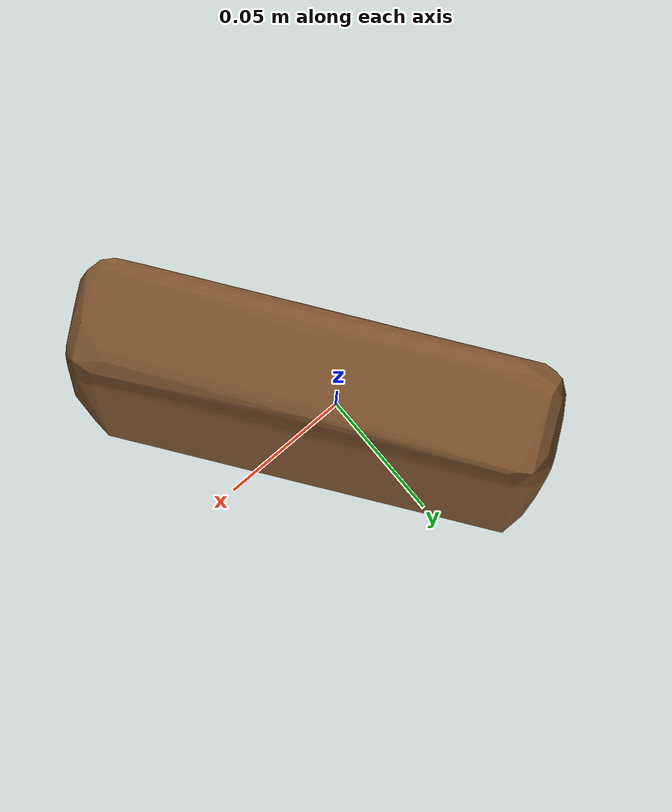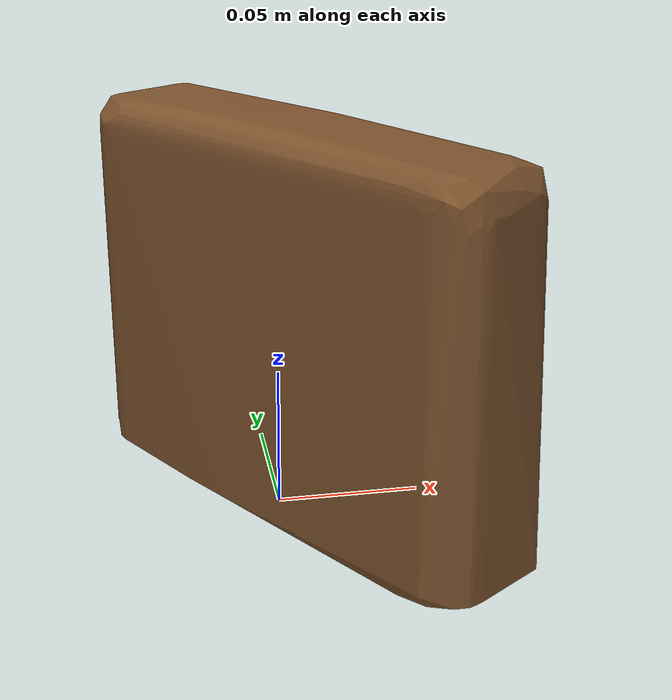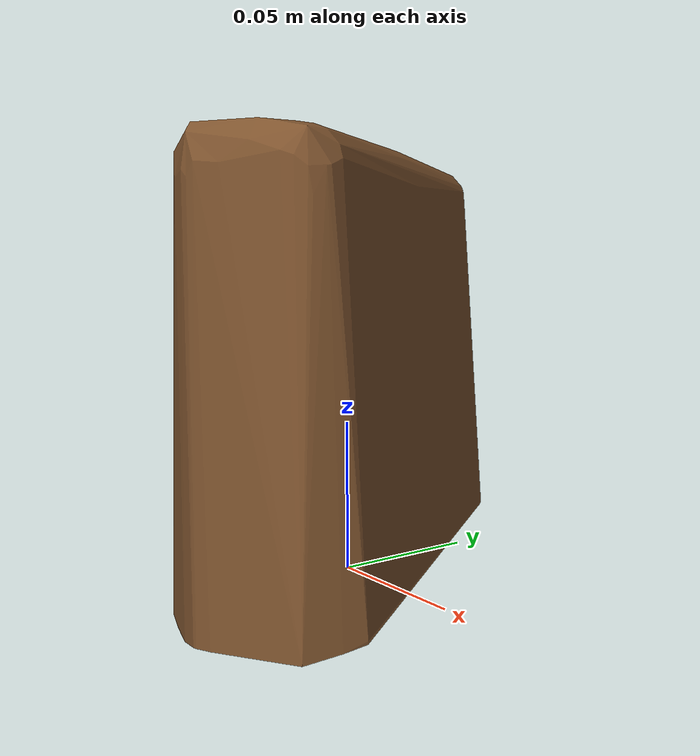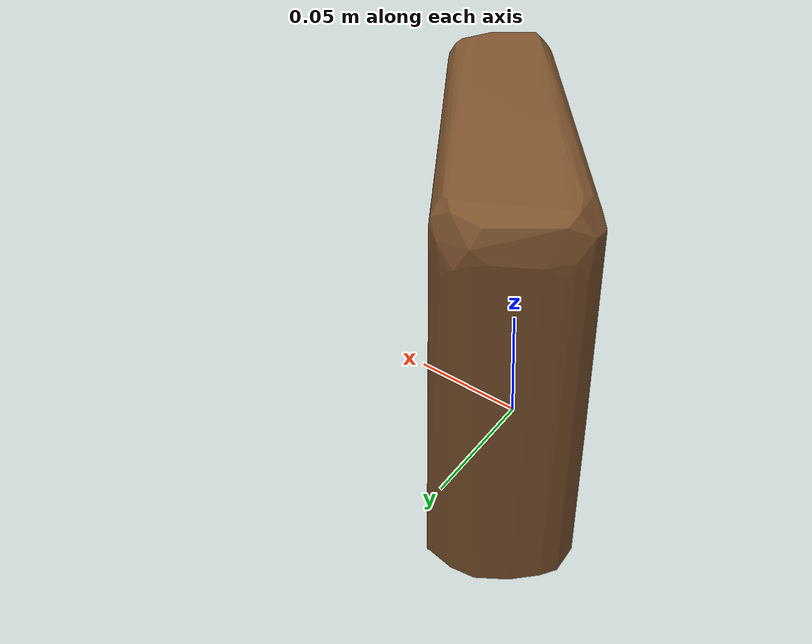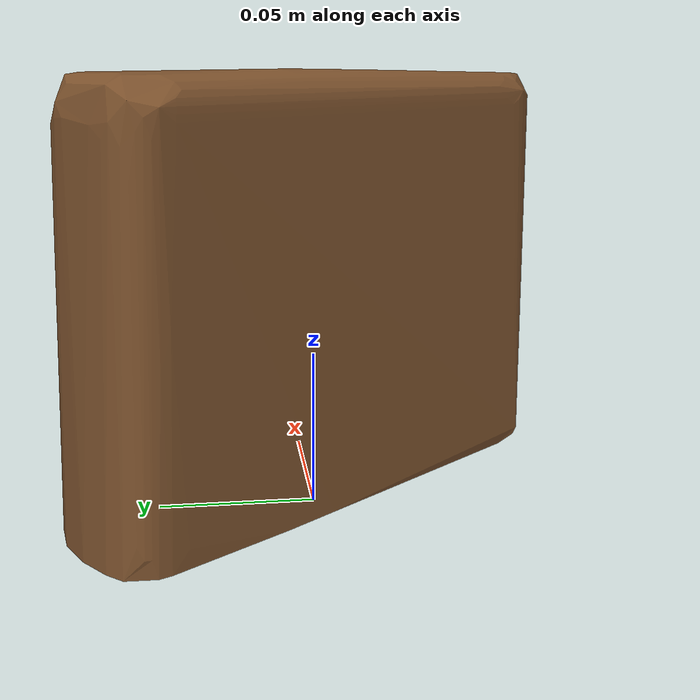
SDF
<?xml version='1.0'?>
<sdf version="1.4">
  <model name="clif_zbar_chocolate_brownie">
    <static>false</static>
    <link name="link">
      <inertial>
        <pose>0.00816435374772054 -0.0032441273944798636 0.06914272494631386 1.565197535217275 0.02646251857196709 -2.519312383899764</pose>
        <mass>0.10491604844704044</mass>
        <inertia>
          <ixx>0.0003921390154113548</ixx>
          <ixy>-9.651553261364566e-22</ixy>
          <ixz>-5.950640219864238e-20</ixz>
          <iyy>0.0002622464763338321</iyy>
          <iyz>9.717087230101276e-24</iyz>
          <izz>0.00016895977043143636</izz>
        </inertia>
      </inertial>
      <collision name="collision">
        <geometry>
          <mesh>
            <!-- Use a downsampled mesh for collisions -->
            <uri>model:///clif_zbar_chocolate_brownie/clif_zbar_chocolate_brownie_250_collision.obj</uri>
	        </mesh>
        </geometry>
        <surface>
      </surface>
      </collision>
      <visual name="visual">
        <geometry>
          <mesh>
            <uri>model:///clif_zbar_chocolate_brownie/optimized_tsdf_texture_mapped_mesh.obj</uri>
	        </mesh>
        </geometry>
        <material>
          <script>
            <uri>model:///clif_zbar_chocolate_brownie/clif_zbar_chocolate_brownie.material</uri>
            <name>clif_zbar_chocolate_brownie</name>
          </script>
        </material>
      </visual>
    </link>
  </model>
</sdf>
